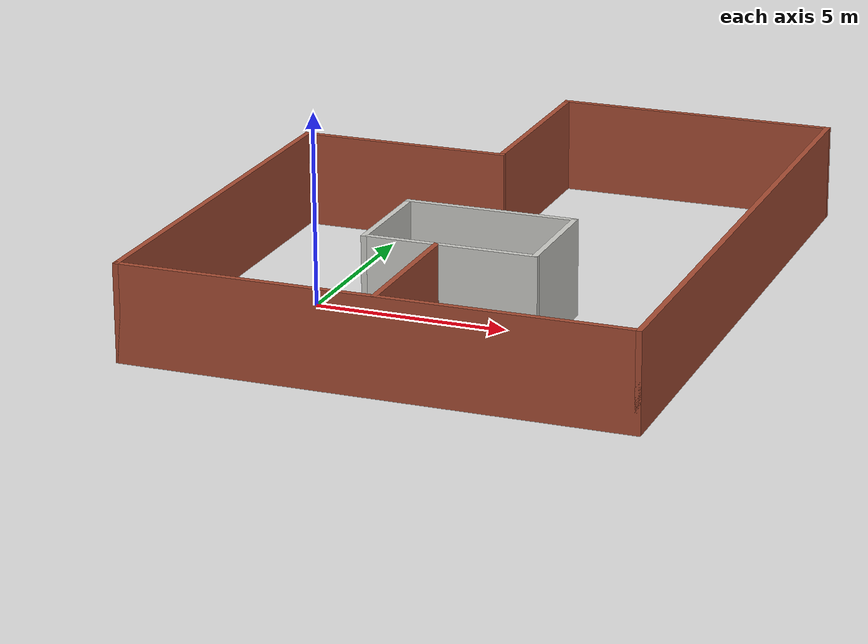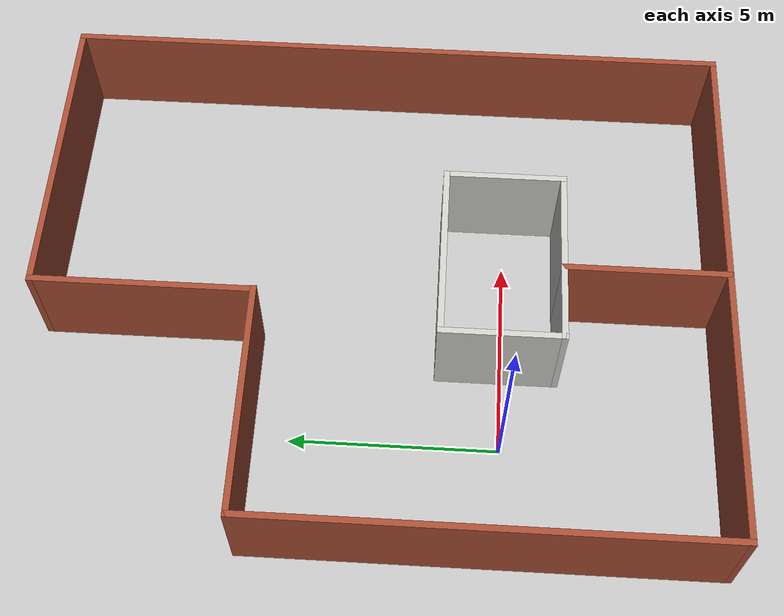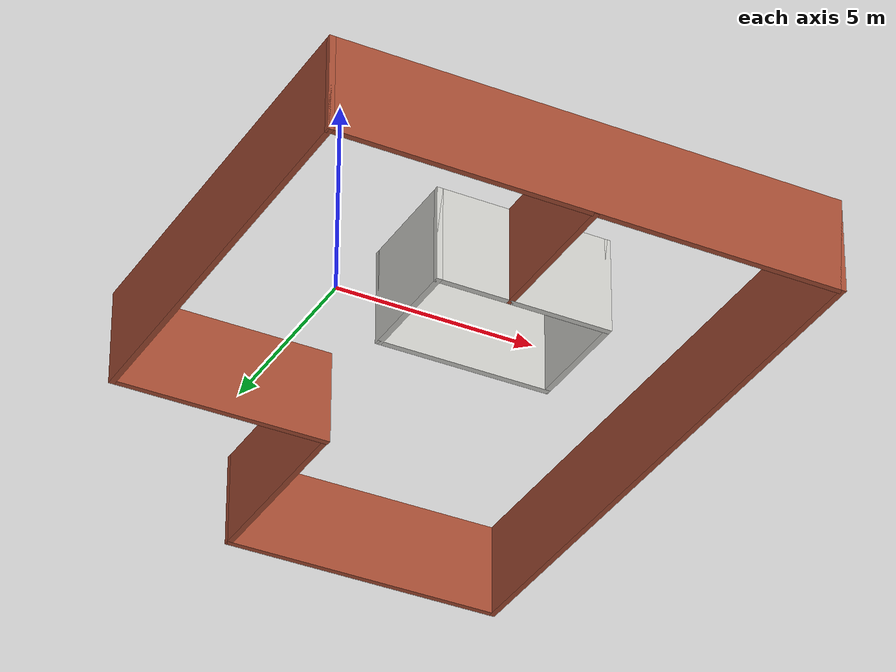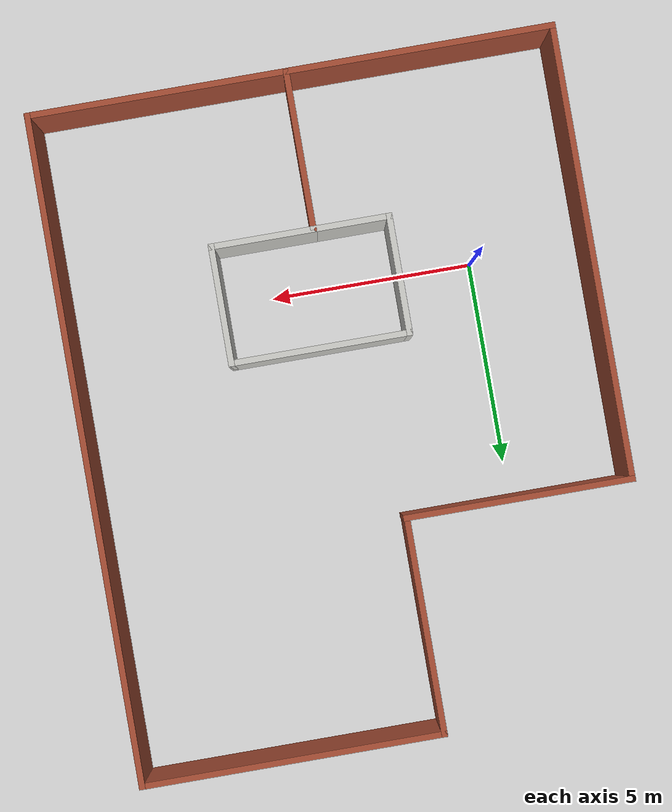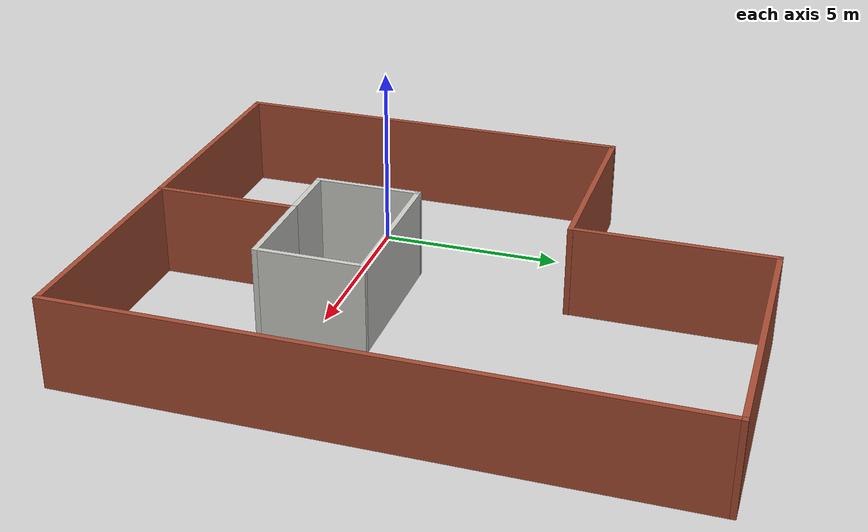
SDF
<?xml version='1.0'?>
<sdf version='1.6'>
  <model name='ForkliftBuilding02'>
    <pose frame='world'>3.625 2.985 0 0 -0 0</pose>
    <link name='Wall_0'>
      <collision name='Wall_0_Collision'>
        <geometry>
          <box>
            <size>13 0.15 2.5</size>
          </box>
        </geometry>
        <pose frame=''>0 0 1.25 0 -0 0</pose>
      </collision>
      <visual name='Wall_0_Visual'>
        <pose frame=''>0 0 1.25 0 -0 0</pose>
        <geometry>
          <box>
            <size>13 0.15 2.5</size>
          </box>
        </geometry>
        <material>
          <script>
            <uri>file://media/materials/scripts/gazebo.material</uri>
            <name>Gazebo/Bricks</name>
          </script>
          <ambient>1 1 1 1</ambient>
        </material>
        <meta>
          <layer>0</layer>
        </meta>
      </visual>
      <pose frame=''>-0 -8.175 0 0 -0 0</pose>
    </link>
    <link name='Wall_1'>
      <collision name='Wall_1_Collision'>
        <geometry>
          <box>
            <size>16.5 0.15 2.5</size>
          </box>
        </geometry>
        <pose frame=''>0 0 1.25 0 -0 0</pose>
      </collision>
      <visual name='Wall_1_Visual'>
        <pose frame=''>0 0 1.25 0 -0 0</pose>
        <geometry>
          <box>
            <size>16.5 0.15 2.5</size>
          </box>
        </geometry>
        <material>
          <script>
            <uri>file://media/materials/scripts/gazebo.material</uri>
            <name>Gazebo/Bricks</name>
          </script>
          <ambient>1 1 1 1</ambient>
        </material>
        <meta>
          <layer>0</layer>
        </meta>
      </visual>
      <pose frame=''>6.425 0 0 0 -0 1.5708</pose>
    </link>
    <link name='Wall_10'>
      <collision name='Wall_10_Collision'>
        <geometry>
          <box>
            <size>4 0.15 2.5</size>
          </box>
        </geometry>
        <pose frame=''>0 0 1.25 0 -0 0</pose>
      </collision>
      <visual name='Wall_10_Visual'>
        <pose frame=''>0 0 1.25 0 -0 0</pose>
        <geometry>
          <box>
            <size>4 0.15 2.5</size>
          </box>
        </geometry>
        <material>
          <script>
            <uri>file://media/materials/scripts/gazebo.material</uri>
            <name>Gazebo/Bricks</name>
          </script>
          <ambient>1 1 1 1</ambient>
        </material>
        <meta>
          <layer>0</layer>
        </meta>
      </visual>
      <pose frame=''>0.094007 -6.22914 0 0 -0 1.5708</pose>
    </link>
    <link name='Wall_11'>
      <collision name='Wall_11_Collision'>
        <geometry>
          <box>
            <size>2 0.15 2.5</size>
          </box>
        </geometry>
        <pose frame=''>0 0 1.25 0 -0 0</pose>
      </collision>
      <visual name='Wall_11_Visual'>
        <pose frame=''>0 0 1.25 0 -0 0</pose>
        <geometry>
          <box>
            <size>2 0.15 2.5</size>
          </box>
        </geometry>
        <material>
          <script>
            <uri>file://media/materials/scripts/gazebo.material</uri>
            <name>Gazebo/CeilingTiled</name>
          </script>
          <ambient>1 1 1 1</ambient>
        </material>
        <meta>
          <layer>0</layer>
        </meta>
      </visual>
      <pose frame=''>-0.830993 -4.30414 0 0 -0 3.14159</pose>
    </link>
    <link name='Wall_12'>
      <collision name='Wall_12_Collision'>
        <geometry>
          <box>
            <size>3 0.15 2.5</size>
          </box>
        </geometry>
        <pose frame=''>0 0 1.25 0 -0 0</pose>
      </collision>
      <visual name='Wall_12_Visual'>
        <pose frame=''>0 0 1.25 0 -0 0</pose>
        <geometry>
          <box>
            <size>3 0.15 2.5</size>
          </box>
        </geometry>
        <material>
          <script>
            <uri>file://media/materials/scripts/gazebo.material</uri>
            <name>Gazebo/CeilingTiled</name>
          </script>
          <ambient>1 1 1 1</ambient>
        </material>
        <meta>
          <layer>0</layer>
        </meta>
      </visual>
      <pose frame=''>-1.75599 -2.87914 0 0 -0 1.5708</pose>
    </link>
    <link name='Wall_13'>
      <collision name='Wall_13_Collision'>
        <geometry>
          <box>
            <size>4.5 0.15 2.5</size>
          </box>
        </geometry>
        <pose frame=''>0 0 1.25 0 -0 0</pose>
      </collision>
      <visual name='Wall_13_Visual'>
        <pose frame=''>0 0 1.25 0 -0 0</pose>
        <geometry>
          <box>
            <size>4.5 0.15 2.5</size>
          </box>
        </geometry>
        <material>
          <script>
            <uri>file://media/materials/scripts/gazebo.material</uri>
            <name>Gazebo/CeilingTiled</name>
          </script>
          <ambient>1 1 1 1</ambient>
        </material>
        <meta>
          <layer>0</layer>
        </meta>
      </visual>
      <pose frame=''>0.419008 -1.45414 0 0 -0 0</pose>
    </link>
    <link name='Wall_14'>
      <collision name='Wall_14_Collision'>
        <geometry>
          <box>
            <size>3 0.15 2.5</size>
          </box>
        </geometry>
        <pose frame=''>0 0 1.25 0 -0 0</pose>
      </collision>
      <visual name='Wall_14_Visual'>
        <pose frame=''>0 0 1.25 0 -0 0</pose>
        <geometry>
          <box>
            <size>3 0.15 2.5</size>
          </box>
        </geometry>
        <material>
          <script>
            <uri>file://media/materials/scripts/gazebo.material</uri>
            <name>Gazebo/CeilingTiled</name>
          </script>
          <ambient>1 1 1 1</ambient>
        </material>
        <meta>
          <layer>0</layer>
        </meta>
      </visual>
      <pose frame=''>2.59401 -2.87914 0 0 -0 -1.5708</pose>
    </link>
    <link name='Wall_15'>
      <collision name='Wall_15_Collision'>
        <geometry>
          <box>
            <size>2.65 0.15 2.5</size>
          </box>
        </geometry>
        <pose frame=''>0 0 1.25 0 -0 0</pose>
      </collision>
      <visual name='Wall_15_Visual'>
        <pose frame=''>0 0 1.25 0 -0 0</pose>
        <geometry>
          <box>
            <size>2.65 0.15 2.5</size>
          </box>
        </geometry>
        <material>
          <script>
            <uri>file://media/materials/scripts/gazebo.material</uri>
            <name>Gazebo/CeilingTiled</name>
          </script>
          <ambient>1 1 1 1</ambient>
        </material>
        <meta>
          <layer>0</layer>
        </meta>
      </visual>
      <pose frame=''>1.34401 -4.30414 0 0 -0 3.14159</pose>
    </link>
    <link name='Wall_2'>
      <collision name='Wall_2_Collision'>
        <geometry>
          <box>
            <size>7.5 0.15 2.5</size>
          </box>
        </geometry>
        <pose frame=''>0 0 1.25 0 -0 0</pose>
      </collision>
      <visual name='Wall_2_Visual'>
        <pose frame=''>0 0 1.25 0 -0 0</pose>
        <geometry>
          <box>
            <size>7.5 0.15 2.5</size>
          </box>
        </geometry>
        <material>
          <script>
            <uri>file://media/materials/scripts/gazebo.material</uri>
            <name>Gazebo/Bricks</name>
          </script>
          <ambient>1 1 1 1</ambient>
        </material>
        <meta>
          <layer>0</layer>
        </meta>
      </visual>
      <pose frame=''>2.75 8.175 0 0 -0 3.14159</pose>
    </link>
    <link name='Wall_3'>
      <collision name='Wall_3_Collision'>
        <geometry>
          <box>
            <size>5.25 0.15 2.5</size>
          </box>
        </geometry>
        <pose frame=''>0 0 1.25 0 -0 0</pose>
      </collision>
      <visual name='Wall_3_Visual'>
        <pose frame=''>0 0 1.25 0 -0 0</pose>
        <geometry>
          <box>
            <size>5.25 0.15 2.5</size>
          </box>
        </geometry>
        <material>
          <script>
            <uri>file://media/materials/scripts/gazebo.material</uri>
            <name>Gazebo/Bricks</name>
          </script>
          <ambient>1 1 1 1</ambient>
        </material>
        <meta>
          <layer>0</layer>
        </meta>
      </visual>
      <pose frame=''>-0.925 5.625 0 0 -0 -1.5708</pose>
    </link>
    <link name='Wall_7'>
      <collision name='Wall_7_Collision'>
        <geometry>
          <box>
            <size>11.25 0.15 2.5</size>
          </box>
        </geometry>
        <pose frame=''>0 0 1.25 0 -0 0</pose>
      </collision>
      <visual name='Wall_7_Visual'>
        <pose frame=''>0 0 1.25 0 -0 0</pose>
        <geometry>
          <box>
            <size>11.25 0.15 2.5</size>
          </box>
        </geometry>
        <material>
          <script>
            <uri>file://media/materials/scripts/gazebo.material</uri>
            <name>Gazebo/Bricks</name>
          </script>
          <ambient>1 1 1 1</ambient>
        </material>
        <meta>
          <layer>0</layer>
        </meta>
      </visual>
      <pose frame=''>-6.425 -2.625 0 0 -0 1.5708</pose>
    </link>
    <link name='Wall_8'>
      <collision name='Wall_8_Collision'>
        <geometry>
          <box>
            <size>5.66 0.15 2.5</size>
          </box>
        </geometry>
        <pose frame=''>0 0 1.25 0 -0 0</pose>
      </collision>
      <visual name='Wall_8_Visual'>
        <pose frame=''>0 0 1.25 0 -0 0</pose>
        <geometry>
          <box>
            <size>5.66 0.15 2.5</size>
          </box>
        </geometry>
        <material>
          <script>
            <uri>file://media/materials/scripts/gazebo.material</uri>
            <name>Gazebo/Bricks</name>
          </script>
          <ambient>1 1 1 1</ambient>
        </material>
        <meta>
          <layer>0</layer>
        </meta>
      </visual>
      <pose frame=''>-3.67 2.925 0 0 -0 0</pose>
    </link>
    <static>1</static>
  </model>
</sdf>
